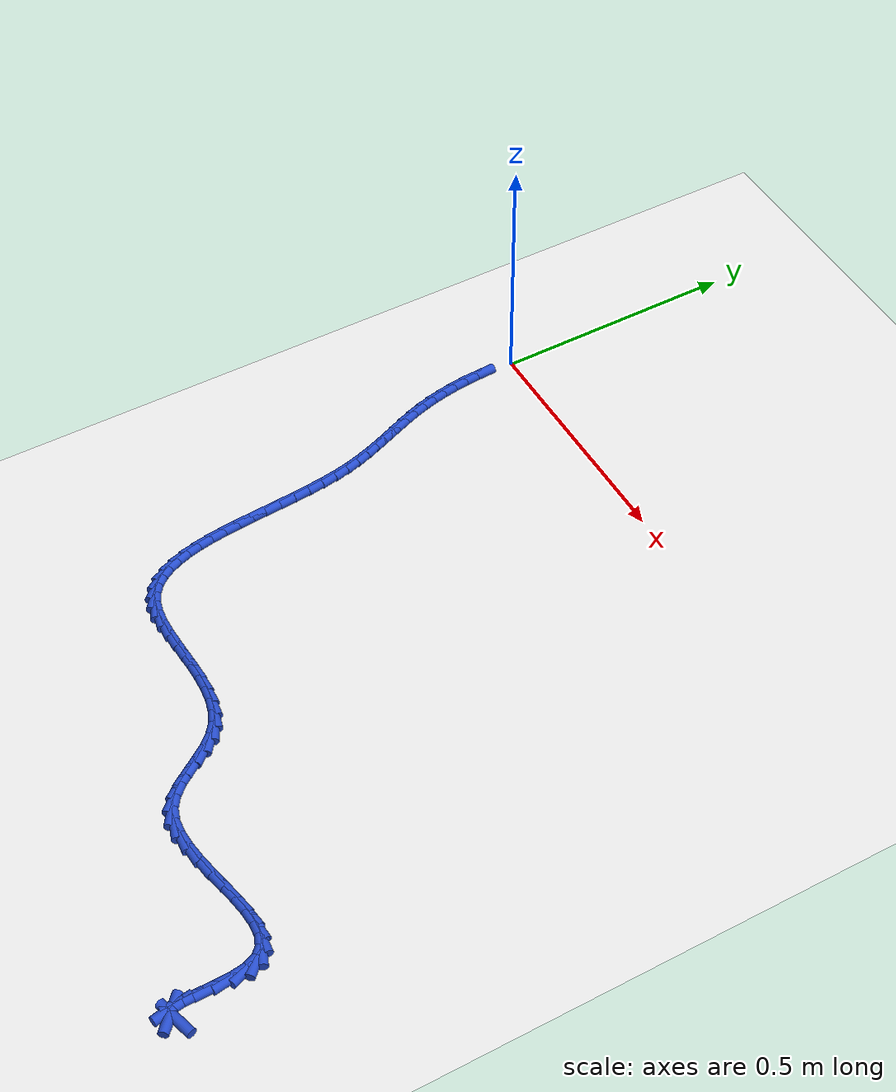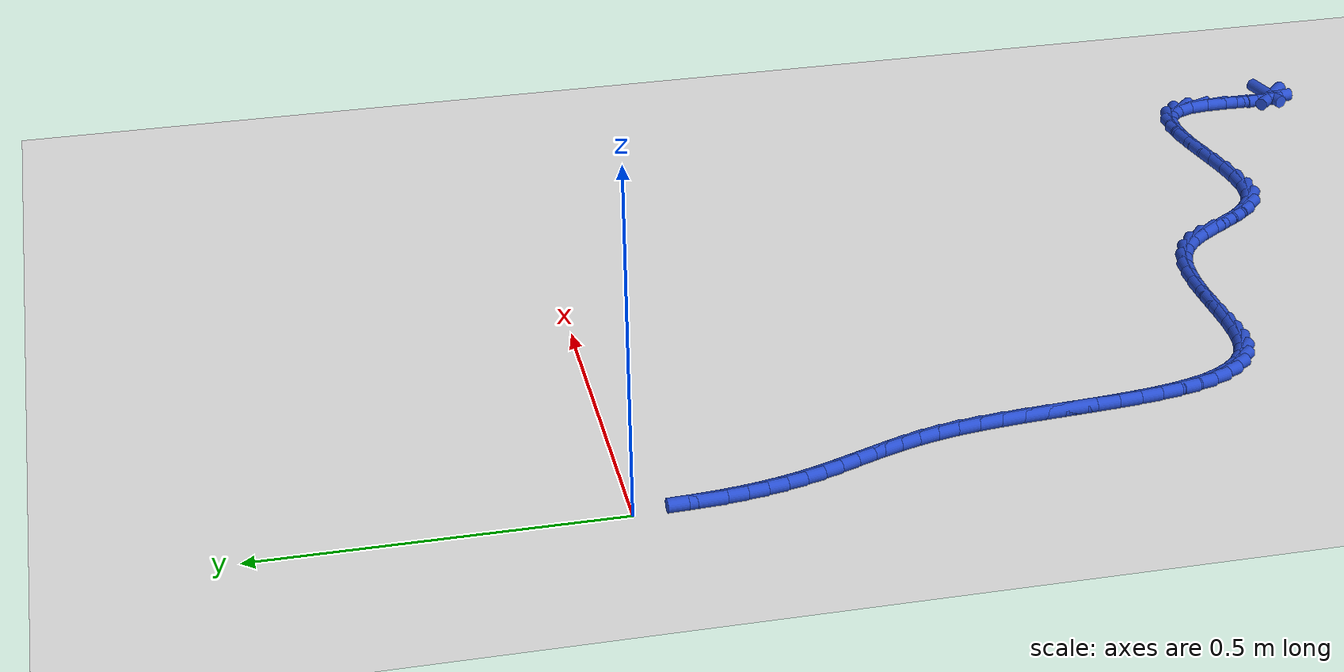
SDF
<sdf version="1.6">
 <world name="default">
  <model name="ground_plane">
   <static>1</static>
   <link name="link">
    <collision name="collision">
     <geometry><plane><normal>0 0 1</normal><size>100 100</size></plane></geometry>
     <surface><friction><ode><mu>100</mu><mu2>50</mu2></ode></friction></surface>
    </collision>
    <visual name="visual">
     <cast_shadows>0</cast_shadows>
     <geometry><plane><normal>0 0 1</normal><size>100 100</size></plane></geometry>
     <material>
      <script><uri>file://media/materials/scripts/gazebo.material</uri><name>Gazebo/WhiteGlow</name></script>
     </material>
    </visual>
   </link>
  </model>
  <model name="line">
   <link name="link_208">
    <pose>1.044565090040178 -1.2511775389087787 0.01 0 1.57 0.27762016951322105</pose>
    <collision name="collision">
     <geometry><cylinder><radius>0.01</radius><length>0.08</length></cylinder></geometry>
    </collision>
    <visual name="visual">
     <material>
      <script><name>Gazebo/Blue</name><uri>file://media/materials/scripts/gazebo.material</uri></script>
     </material>
     <geometry><cylinder><radius>0.01</radius><length>0.08</length></cylinder></geometry>
    </visual>
   </link>
   <link name="link_209">
    <pose>1.0325810392308739 -1.2545927473596994 0.01 0 1.57 -0.7503265520871838</pose>
    <collision name="collision">
     <geometry><cylinder><radius>0.01</radius><length>0.08</length></cylinder></geometry>
    </collision>
    <visual name="visual">
     <material>
      <script><name>Gazebo/Blue</name><uri>file://media/materials/scripts/gazebo.material</uri></script>
     </material>
     <geometry><cylinder><radius>0.01</radius><length>0.08</length></cylinder></geometry>
    </visual>
   </link>
   <link name="link_210">
    <pose>1.0249619984131715 -1.2474902272003865 0.01 0 1.57 -1.401965727621094</pose>
    <collision name="collision">
     <geometry><cylinder><radius>0.01</radius><length>0.08</length></cylinder></geometry>
    </collision>
    <visual name="visual">
     <material>
      <script><name>Gazebo/Blue</name><uri>file://media/materials/scripts/gazebo.material</uri></script>
     </material>
     <geometry><cylinder><radius>0.01</radius><length>0.08</length></cylinder></geometry>
    </visual>
   </link>
   <link name="link_211">
    <pose>1.0218091663254782 -1.2289934668017766 0.01 0 1.57 -1.5592256022441306</pose>
    <collision name="collision">
     <geometry><cylinder><radius>0.01</radius><length>0.08</length></cylinder></geometry>
    </collision>
    <visual name="visual">
     <material>
      <script><name>Gazebo/Blue</name><uri>file://media/materials/scripts/gazebo.material</uri></script>
     </material>
     <geometry><cylinder><radius>0.01</radius><length>0.08</length></cylinder></geometry>
    </visual>
   </link>
   <link name="link_212">
    <pose>1.0214964999338143 -1.2019724763067465 0.01 0 1.57 1.5562232684564348</pose>
    <collision name="collision">
     <geometry><cylinder><radius>0.01</radius><length>0.08</length></cylinder></geometry>
    </collision>
    <visual name="visual">
     <material>
      <script><name>Gazebo/Blue</name><uri>file://media/materials/scripts/gazebo.material</uri></script>
     </material>
     <geometry><cylinder><radius>0.01</radius><length>0.08</length></cylinder></geometry>
    </visual>
   </link>
   <link name="link_213">
    <pose>1.0219588295758895 -1.1702497656760396 0.01 0 1.57 -1.54540928856376</pose>
    <collision name="collision">
     <geometry><cylinder><radius>0.01</radius><length>0.08</length></cylinder></geometry>
    </collision>
    <visual name="visual">
     <material>
      <script><name>Gazebo/Blue</name><uri>file://media/materials/scripts/gazebo.material</uri></script>
     </material>
     <geometry><cylinder><radius>0.01</radius><length>0.08</length></cylinder></geometry>
    </visual>
   </link>
   <link name="link_214">
    <pose>1.0211309855135522 -1.137647845034947 0.01 0 1.57 -1.4306760384299333</pose>
    <collision name="collision">
     <geometry><cylinder><radius>0.01</radius><length>0.08</length></cylinder></geometry>
    </collision>
    <visual name="visual">
     <material>
      <script><name>Gazebo/Blue</name><uri>file://media/materials/scripts/gazebo.material</uri></script>
     </material>
     <geometry><cylinder><radius>0.01</radius><length>0.08</length></cylinder></geometry>
    </visual>
   </link>
   <link name="link_215">
    <pose>1.0169477980086519 -1.1079892245087597 0.01 0 1.57 -1.1774631387695236</pose>
    <collision name="collision">
     <geometry><cylinder><radius>0.01</radius><length>0.08</length></cylinder></geometry>
    </collision>
    <visual name="visual">
     <material>
      <script><name>Gazebo/Blue</name><uri>file://media/materials/scripts/gazebo.material</uri></script>
     </material>
     <geometry><cylinder><radius>0.01</radius><length>0.08</length></cylinder></geometry>
    </visual>
   </link>
   <link name="link_216">
    <pose>1.0074046152786855 -1.0849912016713275 0.01 0 1.57 -0.7702120896312994</pose>
    <collision name="collision">
     <geometry><cylinder><radius>0.01</radius><length>0.08</length></cylinder></geometry>
    </collision>
    <visual name="visual">
     <material>
      <script><name>Gazebo/Blue</name><uri>file://media/materials/scripts/gazebo.material</uri></script>
     </material>
     <geometry><cylinder><radius>0.01</radius><length>0.08</length></cylinder></geometry>
    </visual>
   </link>
   <link name="link_217">
    <pose>0.9918930044287507 -1.0699436994444413 0.01 0 1.57 -0.37894946090569115</pose>
    <collision name="collision">
     <geometry><cylinder><radius>0.01</radius><length>0.08</length></cylinder></geometry>
    </collision>
    <visual name="visual">
     <material>
      <script><name>Gazebo/Blue</name><uri>file://media/materials/scripts/gazebo.material</uri></script>
     </material>
     <geometry><cylinder><radius>0.01</radius><length>0.08</length></cylinder></geometry>
    </visual>
   </link>
   <link name="link_218">
    <pose>0.9712031478204084 -1.0617050999279878 0.01 0 1.57 -0.10661616124005392</pose>
    <collision name="collision">
     <geometry><cylinder><radius>0.01</radius><length>0.08</length></cylinder></geometry>
    </collision>
    <visual name="visual">
     <material>
      <script><name>Gazebo/Blue</name><uri>file://media/materials/scripts/gazebo.material</uri></script>
     </material>
     <geometry><cylinder><radius>0.01</radius><length>0.08</length></cylinder></geometry>
    </visual>
   </link>
   <link name="link_219">
    <pose>0.9461862250450823 -1.0590277394356724 0.01 0 1.57 0.05736253656506781</pose>
    <collision name="collision">
     <geometry><cylinder><radius>0.01</radius><length>0.08</length></cylinder></geometry>
    </collision>
    <visual name="visual">
     <material>
      <script><name>Gazebo/Blue</name><uri>file://media/materials/scripts/gazebo.material</uri></script>
     </material>
     <geometry><cylinder><radius>0.01</radius><length>0.08</length></cylinder></geometry>
    </visual>
   </link>
   <link name="link_220">
    <pose>0.9176934156941949 -1.0606639542812004 0.01 0 1.57 0.14997404439007073</pose>
    <collision name="collision">
     <geometry><cylinder><radius>0.01</radius><length>0.08</length></cylinder></geometry>
    </collision>
    <visual name="visual">
     <material>
      <script><name>Gazebo/Blue</name><uri>file://media/materials/scripts/gazebo.material</uri></script>
     </material>
     <geometry><cylinder><radius>0.01</radius><length>0.08</length></cylinder></geometry>
    </visual>
   </link>
   <link name="link_221">
    <pose>0.8865758993591698 -1.0653660807782772 0.01 0 1.57 0.19570425914953152</pose>
    <collision name="collision">
     <geometry><cylinder><radius>0.01</radius><length>0.08</length></cylinder></geometry>
    </collision>
    <visual name="visual">
     <material>
      <script><name>Gazebo/Blue</name><uri>file://media/materials/scripts/gazebo.material</uri></script>
     </material>
     <geometry><cylinder><radius>0.01</radius><length>0.08</length></cylinder></geometry>
    </visual>
   </link>
   <link name="link_222">
    <pose>0.8536848556314311 -1.071886455240609 0.01 0 1.57 0.2067130785328367</pose>
    <collision name="collision">
     <geometry><cylinder><radius>0.01</radius><length>0.08</length></cylinder></geometry>
    </collision>
    <visual name="visual">
     <material>
      <script><name>Gazebo/Blue</name><uri>file://media/materials/scripts/gazebo.material</uri></script>
     </material>
     <geometry><cylinder><radius>0.01</radius><length>0.08</length></cylinder></geometry>
    </visual>
   </link>
   <link name="link_223">
    <pose>0.8198714641024014 -1.0789774139819013 0.01 0 1.57 0.18707292058999872</pose>
    <collision name="collision">
     <geometry><cylinder><radius>0.01</radius><length>0.08</length></cylinder></geometry>
    </collision>
    <visual name="visual">
     <material>
      <script><name>Gazebo/Blue</name><uri>file://media/materials/scripts/gazebo.material</uri></script>
     </material>
     <geometry><cylinder><radius>0.01</radius><length>0.08</length></cylinder></geometry>
    </visual>
   </link>
   <link name="link_224">
    <pose>0.785986904363504 -1.0853912933158594 0.01 0 1.57 0.13478267230739513</pose>
    <collision name="collision">
     <geometry><cylinder><radius>0.01</radius><length>0.08</length></cylinder></geometry>
    </collision>
    <visual name="visual">
     <material>
      <script><name>Gazebo/Blue</name><uri>file://media/materials/scripts/gazebo.material</uri></script>
     </material>
     <geometry><cylinder><radius>0.01</radius><length>0.08</length></cylinder></geometry>
    </visual>
   </link>
   <link name="link_225">
    <pose>0.7528823560061622 -1.0898804295561881 0.01 0 1.57 0.04181193750676695</pose>
    <collision name="collision">
     <geometry><cylinder><radius>0.01</radius><length>0.08</length></cylinder></geometry>
    </collision>
    <visual name="visual">
     <material>
      <script><name>Gazebo/Blue</name><uri>file://media/materials/scripts/gazebo.material</uri></script>
     </material>
     <geometry><cylinder><radius>0.01</radius><length>0.08</length></cylinder></geometry>
    </visual>
   </link>
   <link name="link_226">
    <pose>0.7214089986217989 -1.0911971590165945 0.01 0 1.57 -0.1066389531355501</pose>
    <collision name="collision">
     <geometry><cylinder><radius>0.01</radius><length>0.08</length></cylinder></geometry>
    </collision>
    <visual name="visual">
     <material>
      <script><name>Gazebo/Blue</name><uri>file://media/materials/scripts/gazebo.material</uri></script>
     </material>
     <geometry><cylinder><radius>0.01</radius><length>0.08</length></cylinder></geometry>
    </visual>
   </link>
   <link name="link_227">
    <pose>0.6924180118018388 -1.0880938180107833 0.01 0 1.57 -0.32939407281526906</pose>
    <collision name="collision">
     <geometry><cylinder><radius>0.01</radius><length>0.08</length></cylinder></geometry>
    </collision>
    <visual name="visual">
     <material>
      <script><name>Gazebo/Blue</name><uri>file://media/materials/scripts/gazebo.material</uri></script>
     </material>
     <geometry><cylinder><radius>0.01</radius><length>0.08</length></cylinder></geometry>
    </visual>
   </link>
   <link name="link_228">
    <pose>0.6667605061549545 -1.079322851241649 0.01 0 1.57 -0.6034321537032865</pose>
    <collision name="collision">
     <geometry><cylinder><radius>0.01</radius><length>0.08</length></cylinder></geometry>
    </collision>
    <visual name="visual">
     <material>
      <script><name>Gazebo/Blue</name><uri>file://media/materials/scripts/gazebo.material</uri></script>
     </material>
     <geometry><cylinder><radius>0.01</radius><length>0.08</length></cylinder></geometry>
    </visual>
   </link>
   <link name="link_229">
    <pose>0.6448950622937089 -1.0642534664075658 0.01 0 1.57 -0.8111916371378282</pose>
    <collision name="collision">
     <geometry><cylinder><radius>0.01</radius><length>0.08</length></cylinder></geometry>
    </collision>
    <visual name="visual">
     <material>
      <script><name>Gazebo/Blue</name><uri>file://media/materials/scripts/gazebo.material</uri></script>
     </material>
     <geometry><cylinder><radius>0.01</radius><length>0.08</length></cylinder></geometry>
    </visual>
   </link>
   <link name="link_230">
    <pose>0.6259652664478011 -1.0443210569319605 0.01 0 1.57 -0.9292599322651747</pose>
    <collision name="collision">
     <geometry><cylinder><radius>0.01</radius><length>0.08</length></cylinder></geometry>
    </collision>
    <visual name="visual">
     <material>
      <script><name>Gazebo/Blue</name><uri>file://media/materials/scripts/gazebo.material</uri></script>
     </material>
     <geometry><cylinder><radius>0.01</radius><length>0.08</length></cylinder></geometry>
    </visual>
   </link>
   <link name="link_231">
    <pose>0.60883965137435 -1.0213931941745862 0.01 0 1.57 -0.9709242966483254</pose>
    <collision name="collision">
     <geometry><cylinder><radius>0.01</radius><length>0.08</length></cylinder></geometry>
    </collision>
    <visual name="visual">
     <material>
      <script><name>Gazebo/Blue</name><uri>file://media/materials/scripts/gazebo.material</uri></script>
     </material>
     <geometry><cylinder><radius>0.01</radius><length>0.08</length></cylinder></geometry>
    </visual>
   </link>
   <link name="link_232">
    <pose>0.592386749830475 -0.997337449495197 0.01 0 1.57 -0.9432768967601781</pose>
    <collision name="collision">
     <geometry><cylinder><radius>0.01</radius><length>0.08</length></cylinder></geometry>
    </collision>
    <visual name="visual">
     <material>
      <script><name>Gazebo/Blue</name><uri>file://media/materials/scripts/gazebo.material</uri></script>
     </material>
     <geometry><cylinder><radius>0.01</radius><length>0.08</length></cylinder></geometry>
    </visual>
   </link>
   <link name="link_233">
    <pose>0.575475094573296 -0.9740213942535465 0.01 0 1.57 -0.8416224569758515</pose>
    <collision name="collision">
     <geometry><cylinder><radius>0.01</radius><length>0.08</length></cylinder></geometry>
    </collision>
    <visual name="visual">
     <material>
      <script><name>Gazebo/Blue</name><uri>file://media/materials/scripts/gazebo.material</uri></script>
     </material>
     <geometry><cylinder><radius>0.01</radius><length>0.08</length></cylinder></geometry>
    </visual>
   </link>
   <link name="link_234">
    <pose>0.5569732183599311 -0.9533125998093873 0.01 0 1.57 -0.6558245624762775</pose>
    <collision name="collision">
     <geometry><cylinder><radius>0.01</radius><length>0.08</length></cylinder></geometry>
    </collision>
    <visual name="visual">
     <material>
      <script><name>Gazebo/Blue</name><uri>file://media/materials/scripts/gazebo.material</uri></script>
     </material>
     <geometry><cylinder><radius>0.01</radius><length>0.08</length></cylinder></geometry>
    </visual>
   </link>
   <link name="link_235">
    <pose>0.5357905837061147 -0.9370139177198119 0.01 0 1.57 -0.4416552751267921</pose>
    <collision name="collision">
     <geometry><cylinder><radius>0.01</radius><length>0.08</length></cylinder></geometry>
    </collision>
    <visual name="visual">
     <material>
      <script><name>Gazebo/Blue</name><uri>file://media/materials/scripts/gazebo.material</uri></script>
     </material>
     <geometry><cylinder><radius>0.01</radius><length>0.08</length></cylinder></geometry>
    </visual>
   </link>
   <link name="link_236">
    <pose>0.5116704255974931 -0.9256098045269843 0.01 0 1.57 -0.2668885827237687</pose>
    <collision name="collision">
     <geometry><cylinder><radius>0.01</radius><length>0.08</length></cylinder></geometry>
    </collision>
    <visual name="visual">
     <material>
      <script><name>Gazebo/Blue</name><uri>file://media/materials/scripts/gazebo.material</uri></script>
     </material>
     <geometry><cylinder><radius>0.01</radius><length>0.08</length></cylinder></geometry>
    </visual>
   </link>
   <link name="link_237">
    <pose>0.48513401703771103 -0.9183544513453096 0.01 0 1.57 -0.13644434838182867</pose>
    <collision name="collision">
     <geometry><cylinder><radius>0.01</radius><length>0.08</length></cylinder></geometry>
    </collision>
    <visual name="visual">
     <material>
      <script><name>Gazebo/Blue</name><uri>file://media/materials/scripts/gazebo.material</uri></script>
     </material>
     <geometry><cylinder><radius>0.01</radius><length>0.08</length></cylinder></geometry>
    </visual>
   </link>
   <link name="link_238">
    <pose>0.4567323971700483 -0.9144549818559008 0.01 0 1.57 -0.044944523247056965</pose>
    <collision name="collision">
     <geometry><cylinder><radius>0.01</radius><length>0.08</length></cylinder></geometry>
    </collision>
    <visual name="visual">
     <material>
      <script><name>Gazebo/Blue</name><uri>file://media/materials/scripts/gazebo.material</uri></script>
     </material>
     <geometry><cylinder><radius>0.01</radius><length>0.08</length></cylinder></geometry>
    </visual>
   </link>
   <link name="link_239">
    <pose>0.42701660513778494 -0.913118519739871 0.01 0 1.57 0.014227525277169976</pose>
    <collision name="collision">
     <geometry><cylinder><radius>0.01</radius><length>0.08</length></cylinder></geometry>
    </collision>
    <visual name="visual">
     <material>
      <script><name>Gazebo/Blue</name><uri>file://media/materials/scripts/gazebo.material</uri></script>
     </material>
     <geometry><cylinder><radius>0.01</radius><length>0.08</length></cylinder></geometry>
    </visual>
   </link>
   <link name="link_240">
    <pose>0.3965376800842007 -0.9135521886783334 0.01 0 1.57 0.04593952976147575</pose>
    <collision name="collision">
     <geometry><cylinder><radius>0.01</radius><length>0.08</length></cylinder></geometry>
    </collision>
    <visual name="visual">
     <material>
      <script><name>Gazebo/Blue</name><uri>file://media/materials/scripts/gazebo.material</uri></script>
     </material>
     <geometry><cylinder><radius>0.01</radius><length>0.08</length></cylinder></geometry>
    </visual>
   </link>
   <link name="link_241">
    <pose>0.3658466611525756 -0.9149631123524016 0.01 0 1.57 0.052511584808521375</pose>
    <collision name="collision">
     <geometry><cylinder><radius>0.01</radius><length>0.08</length></cylinder></geometry>
    </collision>
    <visual name="visual">
     <material>
      <script><name>Gazebo/Blue</name><uri>file://media/materials/scripts/gazebo.material</uri></script>
     </material>
     <geometry><cylinder><radius>0.01</radius><length>0.08</length></cylinder></geometry>
    </visual>
   </link>
   <link name="link_242">
    <pose>0.33549458748618954 -0.9165584144431882 0.01 0 1.57 0.0334815162857992</pose>
    <collision name="collision">
     <geometry><cylinder><radius>0.01</radius><length>0.08</length></cylinder></geometry>
    </collision>
    <visual name="visual">
     <material>
      <script><name>Gazebo/Blue</name><uri>file://media/materials/scripts/gazebo.material</uri></script>
     </material>
     <geometry><cylinder><radius>0.01</radius><length>0.08</length></cylinder></geometry>
    </visual>
   </link>
   <link name="link_243">
    <pose>0.30603249822832135 -0.9175452186318065 0.01 0 1.57 -0.014793862314332629</pose>
    <collision name="collision">
     <geometry><cylinder><radius>0.01</radius><length>0.08</length></cylinder></geometry>
    </collision>
    <visual name="visual">
     <material>
      <script><name>Gazebo/Blue</name><uri>file://media/materials/scripts/gazebo.material</uri></script>
     </material>
     <geometry><cylinder><radius>0.01</radius><length>0.08</length></cylinder></geometry>
    </visual>
   </link>
   <link name="link_244">
    <pose>0.27801143252225285 -0.9171306485993693 0.01 0 1.57 -0.09989384446764171</pose>
    <collision name="collision">
     <geometry><cylinder><radius>0.01</radius><length>0.08</length></cylinder></geometry>
    </collision>
    <visual name="visual">
     <material>
      <script><name>Gazebo/Blue</name><uri>file://media/materials/scripts/gazebo.material</uri></script>
     </material>
     <geometry><cylinder><radius>0.01</radius><length>0.08</length></cylinder></geometry>
    </visual>
   </link>
   <link name="link_245">
    <pose>0.2519824295112631 -0.9145218280269903 0.01 0 1.57 -0.23390701983337048</pose>
    <collision name="collision">
     <geometry><cylinder><radius>0.01</radius><length>0.08</length></cylinder></geometry>
    </collision>
    <visual name="visual">
     <material>
      <script><name>Gazebo/Blue</name><uri>file://media/materials/scripts/gazebo.material</uri></script>
     </material>
     <geometry><cylinder><radius>0.01</radius><length>0.08</length></cylinder></geometry>
    </visual>
   </link>
   <link name="link_246">
    <pose>0.22849652833863188 -0.9089258805957825 0.01 0 1.57 -0.42597404201748873</pose>
    <collision name="collision">
     <geometry><cylinder><radius>0.01</radius><length>0.08</length></cylinder></geometry>
    </collision>
    <visual name="visual">
     <material>
      <script><name>Gazebo/Blue</name><uri>file://media/materials/scripts/gazebo.material</uri></script>
     </material>
     <geometry><cylinder><radius>0.01</radius><length>0.08</length></cylinder></geometry>
    </visual>
   </link>
   <link name="link_247">
    <pose>0.20803633899302718 -0.8996419218167582 0.01 0 1.57 -0.639031533691448</pose>
    <collision name="collision">
     <geometry><cylinder><radius>0.01</radius><length>0.08</length></cylinder></geometry>
    </collision>
    <visual name="visual">
     <material>
      <script><name>Gazebo/Blue</name><uri>file://media/materials/scripts/gazebo.material</uri></script>
     </material>
     <geometry><cylinder><radius>0.01</radius><length>0.08</length></cylinder></geometry>
    </visual>
   </link>
   <link name="link_248">
    <pose>0.19056853854973527 -0.8866626547963986 0.01 0 1.57 -0.837474130890688</pose>
    <collision name="collision">
     <geometry><cylinder><radius>0.01</radius><length>0.08</length></cylinder></geometry>
    </collision>
    <visual name="visual">
     <material>
      <script><name>Gazebo/Blue</name><uri>file://media/materials/scripts/gazebo.material</uri></script>
     </material>
     <geometry><cylinder><radius>0.01</radius><length>0.08</length></cylinder></geometry>
    </visual>
   </link>
   <link name="link_249">
    <pose>0.17582450946853895 -0.8702970978487645 0.01 0 1.57 -1.0070605560140042</pose>
    <collision name="collision">
     <geometry><cylinder><radius>0.01</radius><length>0.08</length></cylinder></geometry>
    </collision>
    <visual name="visual">
     <material>
      <script><name>Gazebo/Blue</name><uri>file://media/materials/scripts/gazebo.material</uri></script>
     </material>
     <geometry><cylinder><radius>0.01</radius><length>0.08</length></cylinder></geometry>
    </visual>
   </link>
   <link name="link_250">
    <pose>0.16353443467558443 -0.8508558818651145 0.01 0 1.57 -1.1437139712092061</pose>
    <collision name="collision">
     <geometry><cylinder><radius>0.01</radius><length>0.08</length></cylinder></geometry>
    </collision>
    <visual name="visual">
     <material>
      <script><name>Gazebo/Blue</name><uri>file://media/materials/scripts/gazebo.material</uri></script>
     </material>
     <geometry><cylinder><radius>0.01</radius><length>0.08</length></cylinder></geometry>
    </visual>
   </link>
   <link name="link_251">
    <pose>0.15342849709701775 -0.8286496377367046 0.01 0 1.57 -1.2500897706851961</pose>
    <collision name="collision">
     <geometry><cylinder><radius>0.01</radius><length>0.08</length></cylinder></geometry>
    </collision>
    <visual name="visual">
     <material>
      <script><name>Gazebo/Blue</name><uri>file://media/materials/scripts/gazebo.material</uri></script>
     </material>
     <geometry><cylinder><radius>0.01</radius><length>0.08</length></cylinder></geometry>
    </visual>
   </link>
   <link name="link_252">
    <pose>0.14523687965898482 -0.8039889963547924 0.01 0 1.57 -1.3312318562485335</pose>
    <collision name="collision">
     <geometry><cylinder><radius>0.01</radius><length>0.08</length></cylinder></geometry>
    </collision>
    <visual name="visual">
     <material>
      <script><name>Gazebo/Blue</name><uri>file://media/materials/scripts/gazebo.material</uri></script>
     </material>
     <geometry><cylinder><radius>0.01</radius><length>0.08</length></cylinder></geometry>
    </visual>
   </link>
   <link name="link_253">
    <pose>0.13868976528763227 -0.777184588610636 0.01 0 1.57 -1.3921057745591177</pose>
    <collision name="collision">
     <geometry><cylinder><radius>0.01</radius><length>0.08</length></cylinder></geometry>
    </collision>
    <visual name="visual">
     <material>
      <script><name>Gazebo/Blue</name><uri>file://media/materials/scripts/gazebo.material</uri></script>
     </material>
     <geometry><cylinder><radius>0.01</radius><length>0.08</length></cylinder></geometry>
    </visual>
   </link>
   <link name="link_254">
    <pose>0.13351733690910597 -0.7485470453954922 0.01 0 1.57 -1.4367393833534772</pose>
    <collision name="collision">
     <geometry><cylinder><radius>0.01</radius><length>0.08</length></cylinder></geometry>
    </collision>
    <visual name="visual">
     <material>
      <script><name>Gazebo/Blue</name><uri>file://media/materials/scripts/gazebo.material</uri></script>
     </material>
     <geometry><cylinder><radius>0.01</radius><length>0.08</length></cylinder></geometry>
    </visual>
   </link>
   <link name="link_255">
    <pose>0.12944977744955202 -0.7183869976006186 0.01 0 1.57 -1.4681204283409988</pose>
    <collision name="collision">
     <geometry><cylinder><radius>0.01</radius><length>0.08</length></cylinder></geometry>
    </collision>
    <visual name="visual">
     <material>
      <script><name>Gazebo/Blue</name><uri>file://media/materials/scripts/gazebo.material</uri></script>
     </material>
     <geometry><cylinder><radius>0.01</radius><length>0.08</length></cylinder></geometry>
    </visual>
   </link>
   <link name="link_256">
    <pose>0.12621726983511644 -0.6870150761172719 0.01 0 1.57 -1.488336960181775</pose>
    <collision name="collision">
     <geometry><cylinder><radius>0.01</radius><length>0.08</length></cylinder></geometry>
    </collision>
    <visual name="visual">
     <material>
      <script><name>Gazebo/Blue</name><uri>file://media/materials/scripts/gazebo.material</uri></script>
     </material>
     <geometry><cylinder><radius>0.01</radius><length>0.08</length></cylinder></geometry>
    </visual>
   </link>
   <link name="link_257">
    <pose>0.12354999699194551 -0.6547419118367102 0.01 0 1.57 -1.4987489227762503</pose>
    <collision name="collision">
     <geometry><cylinder><radius>0.01</radius><length>0.08</length></cylinder></geometry>
    </collision>
    <visual name="visual">
     <material>
      <script><name>Gazebo/Blue</name><uri>file://media/materials/scripts/gazebo.material</uri></script>
     </material>
     <geometry><cylinder><radius>0.01</radius><length>0.08</length></cylinder></geometry>
    </visual>
   </link>
   <link name="link_258">
    <pose>0.1211781418461853 -0.6218781356501903 0.01 0 1.57 -1.5001239820403631</pose>
    <collision name="collision">
     <geometry><cylinder><radius>0.01</radius><length>0.08</length></cylinder></geometry>
    </collision>
    <visual name="visual">
     <material>
      <script><name>Gazebo/Blue</name><uri>file://media/materials/scripts/gazebo.material</uri></script>
     </material>
     <geometry><cylinder><radius>0.01</radius><length>0.08</length></cylinder></geometry>
    </visual>
   </link>
   <link name="link_259">
    <pose>0.11883188732398188 -0.5887343784489696 0.01 0 1.57 -1.4927243526855283</pose>
    <collision name="collision">
     <geometry><cylinder><radius>0.01</radius><length>0.08</length></cylinder></geometry>
    </collision>
    <visual name="visual">
     <material>
      <script><name>Gazebo/Blue</name><uri>file://media/materials/scripts/gazebo.material</uri></script>
     </material>
     <geometry><cylinder><radius>0.01</radius><length>0.08</length></cylinder></geometry>
    </visual>
   </link>
   <link name="link_260">
    <pose>0.11624141635148146 -0.5556212711243056 0.01 0 1.57 -1.476347284514659</pose>
    <collision name="collision">
     <geometry><cylinder><radius>0.01</radius><length>0.08</length></cylinder></geometry>
    </collision>
    <visual name="visual">
     <material>
      <script><name>Gazebo/Blue</name><uri>file://media/materials/scripts/gazebo.material</uri></script>
     </material>
     <geometry><cylinder><radius>0.01</radius><length>0.08</length></cylinder></geometry>
    </visual>
   </link>
   <link name="link_261">
    <pose>0.11313691185482998 -0.5228494445674543 0.01 0 1.57 -1.4503250895012554</pose>
    <collision name="collision">
     <geometry><cylinder><radius>0.01</radius><length>0.08</length></cylinder></geometry>
    </collision>
    <visual name="visual">
     <material>
      <script><name>Gazebo/Blue</name><uri>file://media/materials/scripts/gazebo.material</uri></script>
     </material>
     <geometry><cylinder><radius>0.01</radius><length>0.08</length></cylinder></geometry>
    </visual>
   </link>
   <link name="link_262">
    <pose>0.10924855676017377 -0.4907295296696754 0.01 0 1.57 -1.413491905135584</pose>
    <collision name="collision">
     <geometry><cylinder><radius>0.01</radius><length>0.08</length></cylinder></geometry>
    </collision>
    <visual name="visual">
     <material>
      <script><name>Gazebo/Blue</name><uri>file://media/materials/scripts/gazebo.material</uri></script>
     </material>
     <geometry><cylinder><radius>0.01</radius><length>0.08</length></cylinder></geometry>
    </visual>
   </link>
   <link name="link_263">
    <pose>0.10430653399365888 -0.4595721573222251 0.01 0 1.57 -1.364142094382931</pose>
    <collision name="collision">
     <geometry><cylinder><radius>0.01</radius><length>0.08</length></cylinder></geometry>
    </collision>
    <visual name="visual">
     <material>
      <script><name>Gazebo/Blue</name><uri>file://media/materials/scripts/gazebo.material</uri></script>
     </material>
     <geometry><cylinder><radius>0.01</radius><length>0.08</length></cylinder></geometry>
    </visual>
   </link>
   <link name="link_264">
    <pose>0.09804133581901897 -0.4296876685392983 0.01 0 1.57 -1.3063752697891373</pose>
    <collision name="collision">
     <geometry><cylinder><radius>0.01</radius><length>0.08</length></cylinder></geometry>
    </collision>
    <visual name="visual">
     <material>
      <script><name>Gazebo/Blue</name><uri>file://media/materials/scripts/gazebo.material</uri></script>
     </material>
     <geometry><cylinder><radius>0.01</radius><length>0.08</length></cylinder></geometry>
    </visual>
   </link>
   <link name="link_265">
    <pose>0.09033899127701095 -0.40124065242585094 0.01 0 1.57 -1.256655019539335</pose>
    <collision name="collision">
     <geometry><cylinder><radius>0.01</radius><length>0.08</length></cylinder></geometry>
    </collision>
    <visual name="visual">
     <material>
      <script><name>Gazebo/Blue</name><uri>file://media/materials/scripts/gazebo.material</uri></script>
     </material>
     <geometry><cylinder><radius>0.01</radius><length>0.08</length></cylinder></geometry>
    </visual>
   </link>
   <link name="link_266">
    <pose>0.08149300860847863 -0.3740138535319704 0.01 0 1.57 -1.219615030674222</pose>
    <collision name="collision">
     <geometry><cylinder><radius>0.01</radius><length>0.08</length></cylinder></geometry>
    </collision>
    <visual name="visual">
     <material>
      <script><name>Gazebo/Blue</name><uri>file://media/materials/scripts/gazebo.material</uri></script>
     </material>
     <geometry><cylinder><radius>0.01</radius><length>0.08</length></cylinder></geometry>
    </visual>
   </link>
   <link name="link_267">
    <pose>0.07186281021756478 -0.3477282489252836 0.01 0 1.57 -1.196846737910095</pose>
    <collision name="collision">
     <geometry><cylinder><radius>0.01</radius><length>0.08</length></cylinder></geometry>
    </collision>
    <visual name="visual">
     <material>
      <script><name>Gazebo/Blue</name><uri>file://media/materials/scripts/gazebo.material</uri></script>
     </material>
     <geometry><cylinder><radius>0.01</radius><length>0.08</length></cylinder></geometry>
    </visual>
   </link>
   <link name="link_268">
    <pose>0.061807818508412264 -0.3221048156734176 0.01 0 1.57 -1.1894620225440349</pose>
    <collision name="collision">
     <geometry><cylinder><radius>0.01</radius><length>0.08</length></cylinder></geometry>
    </collision>
    <visual name="visual">
     <material>
      <script><name>Gazebo/Blue</name><uri>file://media/materials/scripts/gazebo.material</uri></script>
     </material>
     <geometry><cylinder><radius>0.01</radius><length>0.08</length></cylinder></geometry>
    </visual>
   </link>
   <link name="link_269">
    <pose>0.05168745588516381 -0.29686453084399916 0.01 0 1.57 -1.1981390706469102</pose>
    <collision name="collision">
     <geometry><cylinder><radius>0.01</radius><length>0.08</length></cylinder></geometry>
    </collision>
    <visual name="visual">
     <material>
      <script><name>Gazebo/Blue</name><uri>file://media/materials/scripts/gazebo.material</uri></script>
     </material>
     <geometry><cylinder><radius>0.01</radius><length>0.08</length></cylinder></geometry>
    </visual>
   </link>
   <link name="link_270">
    <pose>0.04186114475196199 -0.2717283715046547 0.01 0 1.57 -1.2231138768115724</pose>
    <collision name="collision">
     <geometry><cylinder><radius>0.01</radius><length>0.08</length></cylinder></geometry>
    </collision>
    <visual name="visual">
     <material>
      <script><name>Gazebo/Blue</name><uri>file://media/materials/scripts/gazebo.material</uri></script>
     </material>
     <geometry><cylinder><radius>0.01</radius><length>0.08</length></cylinder></geometry>
    </visual>
   </link>
   <link name="link_271">
    <pose>0.032688307512950196 -0.24641731472301256 0.01 0 1.57 -1.2640823842401083</pose>
    <collision name="collision">
     <geometry><cylinder><radius>0.01</radius><length>0.08</length></cylinder></geometry>
    </collision>
    <visual name="visual">
     <material>
      <script><name>Gazebo/Blue</name><uri>file://media/materials/scripts/gazebo.material</uri></script>
     </material>
     <geometry><cylinder><radius>0.01</radius><length>0.08</length></cylinder></geometry>
    </visual>
   </link>
   <link name="link_272">
    <pose>0.024528339338766265 -0.22065236230958446 0.01 0 1.57 -1.3160550924466778</pose>
    <collision name="collision">
     <geometry><cylinder><radius>0.01</radius><length>0.08</length></cylinder></geometry>
    </collision>
    <visual name="visual">
     <material>
      <script><name>Gazebo/Blue</name><uri>file://media/materials/scripts/gazebo.material</uri></script>
     </material>
     <geometry><cylinder><radius>0.01</radius><length>0.08</length></cylinder></geometry>
    </visual>
   </link>
   <link name="link_273">
    <pose>0.01764982561791291 -0.19423702091847875 0.01 0 1.57 -1.3654859603610137</pose>
    <collision name="collision">
     <geometry><cylinder><radius>0.01</radius><length>0.08</length></cylinder></geometry>
    </collision>
    <visual name="visual">
     <material>
      <script><name>Gazebo/Blue</name><uri>file://media/materials/scripts/gazebo.material</uri></script>
     </material>
     <geometry><cylinder><radius>0.01</radius><length>0.08</length></cylinder></geometry>
    </visual>
   </link>
   <link name="link_274">
    <pose>0.012028097737462112 -0.16724123188686243 0.01 0 1.57 -1.4101428692724423</pose>
    <collision name="collision">
     <geometry><cylinder><radius>0.01</radius><length>0.08</length></cylinder></geometry>
    </collision>
    <visual name="visual">
     <material>
      <script><name>Gazebo/Blue</name><uri>file://media/materials/scripts/gazebo.material</uri></script>
     </material>
     <geometry><cylinder><radius>0.01</radius><length>0.08</length></cylinder></geometry>
    </visual>
   </link>
   <link name="link_275">
    <pose>0.007579401534856531 -0.13978861847819202 0.01 0 1.57 -1.4504762380102663</pose>
    <collision name="collision">
     <geometry><cylinder><radius>0.01</radius><length>0.08</length></cylinder></geometry>
    </collision>
    <visual name="visual">
     <material>
      <script><name>Gazebo/Blue</name><uri>file://media/materials/scripts/gazebo.material</uri></script>
     </material>
     <geometry><cylinder><radius>0.01</radius><length>0.08</length></cylinder></geometry>
    </visual>
   </link>
   <link name="link_276">
    <pose>0.004219982847538832 -0.1120028039559238 0.01 0 1.57 -1.486912107517329</pose>
    <collision name="collision">
     <geometry><cylinder><radius>0.01</radius><length>0.08</length></cylinder></geometry>
    </collision>
    <visual name="visual">
     <material>
      <script><name>Gazebo/Blue</name><uri>file://media/materials/scripts/gazebo.material</uri></script>
     </material>
     <geometry><cylinder><radius>0.01</radius><length>0.08</length></cylinder></geometry>
    </visual>
   </link>
   <link name="link_277">
    <pose>0.0018660875129516688 -0.08400741158351414 0.01 0 1.57 -1.5198412758764868</pose>
    <collision name="collision">
     <geometry><cylinder><radius>0.01</radius><length>0.08</length></cylinder></geometry>
    </collision>
    <visual name="visual">
     <material>
      <script><name>Gazebo/Blue</name><uri>file://media/materials/scripts/gazebo.material</uri></script>
     </material>
     <geometry><cylinder><radius>0.01</radius><length>0.08</length></cylinder></geometry>
    </visual>
   </link>
  </model>
 </world>
</sdf>
